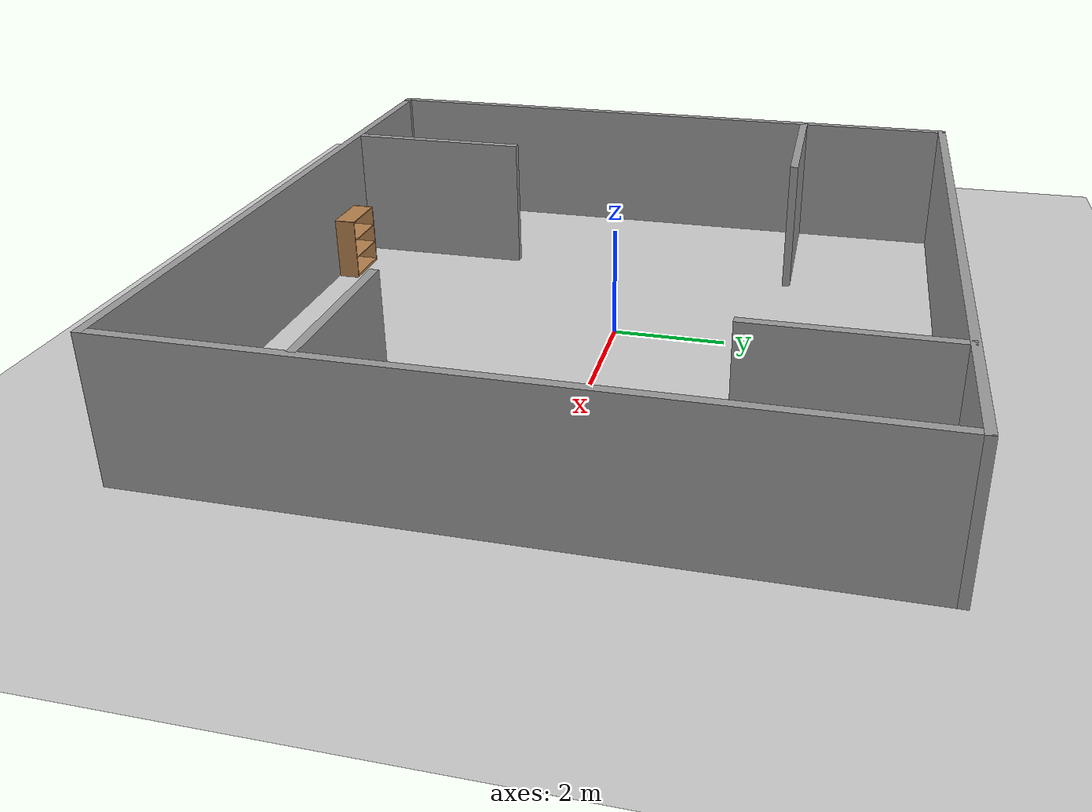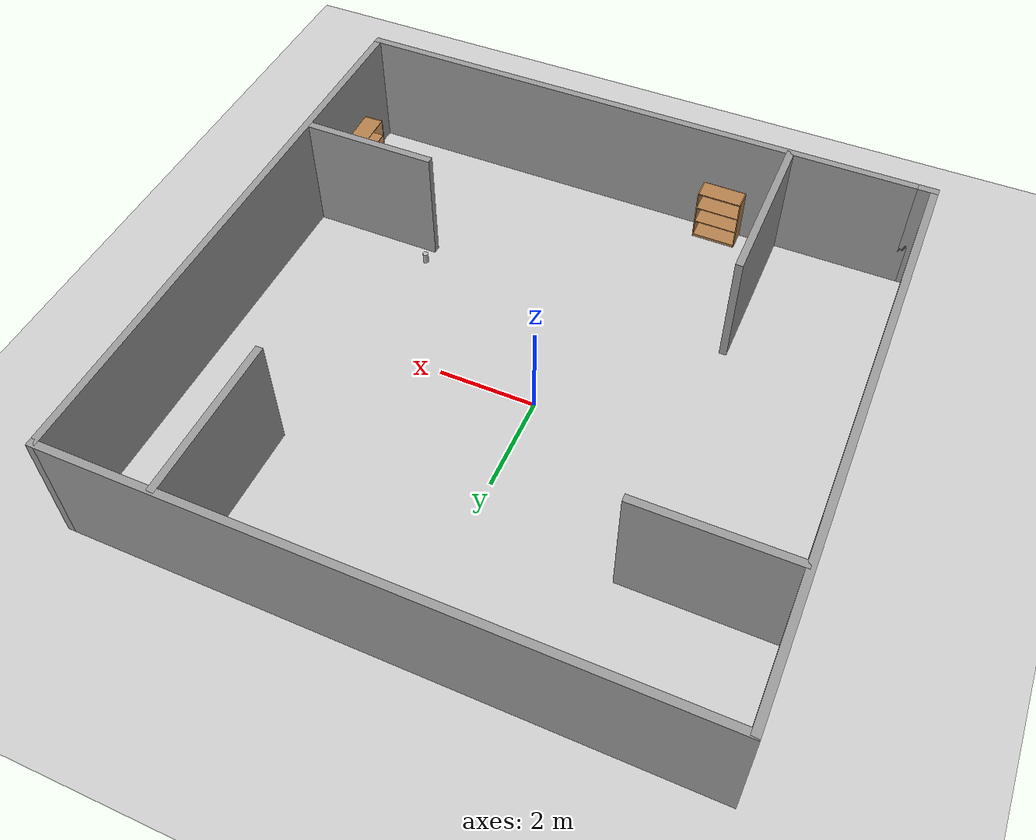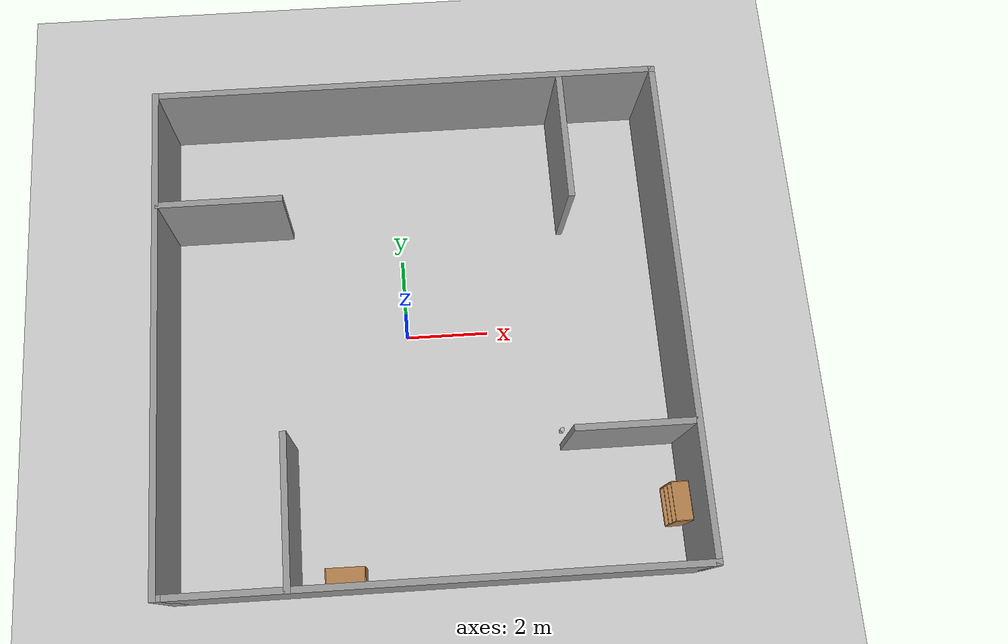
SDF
<sdf version="1.7">
 <world name="default">
  <model name="ground_plane">
   <static>1</static>
   <link name="link">
    <collision name="collision">
     <geometry><plane><normal>0 0 1</normal><size>100 100</size></plane></geometry>
     <surface>
      <contact><collide_bitmask>65535</collide_bitmask></contact>
      <friction><ode><mu>100</mu><mu2>50</mu2></ode></friction>
     </surface>
    </collision>
    <visual name="visual">
     <cast_shadows>0</cast_shadows>
     <geometry><plane><normal>0 0 1</normal><size>100 100</size></plane></geometry>
     <material>
      <script><uri>file://media/materials/scripts/gazebo.material</uri><name>Gazebo/Grey</name></script>
     </material>
    </visual>
   </link>
  </model>
  <model name="Untitled">
   <pose>0.29837 -0.160836 0 0 -0 0</pose>
   <link name="Wall_10">
    <collision name="Wall_10_Collision">
     <geometry><box><size>12 0.15 2.5</size></box></geometry>
     <pose>0 0 1.25 0 -0 0</pose>
    </collision>
    <visual name="Wall_10_Visual">
     <pose>0 0 1.25 0 -0 0</pose>
     <geometry><box><size>12 0.15 2.5</size></box></geometry>
     <material>
      <script><uri>file://media/materials/scripts/gazebo.material</uri><name>Gazebo/Grey</name></script>
      <ambient>1 1 1 1</ambient>
     </material>
     <meta><layer>0</layer></meta>
    </visual>
    <pose>-6.05 -0 0 0 -0 -1.5708</pose>
   </link>
   <link name="Wall_11">
    <collision name="Wall_11_Collision">
     <geometry><box><size>0.4 0.15 2.5</size></box></geometry>
     <pose>0 0 1.25 0 -0 0</pose>
    </collision>
    <visual name="Wall_11_Visual">
     <pose>0 0 1.25 0 -0 0</pose>
     <geometry><box><size>0.4 0.15 2.5</size></box></geometry>
     <material>
      <script><uri>file://media/materials/scripts/gazebo.material</uri><name>Gazebo/Grey</name></script>
      <ambient>1 1 1 1</ambient>
     </material>
     <meta><layer>0</layer></meta>
    </visual>
    <pose>-5.925 -5.925 0 0 -0 0</pose>
   </link>
   <link name="Wall_7">
    <collision name="Wall_7_Collision">
     <geometry><box><size>12 0.15 2.5</size></box></geometry>
     <pose>0 0 1.25 0 -0 0</pose>
    </collision>
    <visual name="Wall_7_Visual">
     <pose>0 0 1.25 0 -0 0</pose>
     <geometry><box><size>12 0.15 2.5</size></box></geometry>
     <material>
      <script><uri>file://media/materials/scripts/gazebo.material</uri><name>Gazebo/Grey</name></script>
      <ambient>1 1 1 1</ambient>
     </material>
     <meta><layer>0</layer></meta>
    </visual>
    <pose>0.125 -5.925 0 0 -0 0</pose>
   </link>
   <link name="Wall_8">
    <collision name="Wall_8_Collision">
     <geometry><box><size>12 0.15 2.5</size></box></geometry>
     <pose>0 0 1.25 0 -0 0</pose>
    </collision>
    <visual name="Wall_8_Visual">
     <pose>0 0 1.25 0 -0 0</pose>
     <geometry><box><size>12 0.15 2.5</size></box></geometry>
     <material>
      <script><uri>file://media/materials/scripts/gazebo.material</uri><name>Gazebo/Grey</name></script>
      <ambient>1 1 1 1</ambient>
     </material>
     <meta><layer>0</layer></meta>
    </visual>
    <pose>6.05 -0 0 0 -0 1.5708</pose>
   </link>
   <link name="Wall_9">
    <collision name="Wall_9_Collision">
     <geometry><box><size>12.25 0.15 2.5</size></box></geometry>
     <pose>0 0 1.25 0 -0 0</pose>
    </collision>
    <visual name="Wall_9_Visual">
     <pose>0 0 1.25 0 -0 0</pose>
     <geometry><box><size>12.25 0.15 2.5</size></box></geometry>
     <material>
      <script><uri>file://media/materials/scripts/gazebo.material</uri><name>Gazebo/Grey</name></script>
      <ambient>1 1 1 1</ambient>
     </material>
     <meta><layer>0</layer></meta>
    </visual>
    <pose>-0 5.925 0 0 -0 3.14159</pose>
   </link>
   <static>1</static>
  </model>
  <model name="auto_parking_0">
   <pose>0.28049 -0.18355 0 0 -0 0</pose>
   <link name="Wall_11">
    <collision name="Wall_11_Collision">
     <geometry><box><size>3.25 0.15 2.5</size></box></geometry>
     <pose>0 0 1.25 0 -0 0</pose>
    </collision>
    <visual name="Wall_11_Visual">
     <pose>0 0 1.25 0 -0 0</pose>
     <geometry><box><size>3.25 0.15 2.5</size></box></geometry>
     <material>
      <script><uri>file://media/materials/scripts/gazebo.material</uri><name>Gazebo/Grey</name></script>
      <ambient>1 1 1 1</ambient>
     </material>
     <meta><layer>0</layer></meta>
    </visual>
    <pose>3.7875 4.34983 0 0 -0 1.5708</pose>
   </link>
   <link name="Wall_4">
    <collision name="Wall_4_Collision">
     <geometry><box><size>2.75 0.15 2.5</size></box></geometry>
     <pose>0 0 1.25 0 -0 0</pose>
    </collision>
    <visual name="Wall_4_Visual">
     <pose>0 0 1.25 0 -0 0</pose>
     <geometry><box><size>2.75 0.15 2.5</size></box></geometry>
     <material>
      <script><uri>file://media/materials/scripts/gazebo.material</uri><name>Gazebo/Grey</name></script>
      <ambient>1 1 1 1</ambient>
     </material>
     <meta><layer>0</layer></meta>
    </visual>
    <pose>4.64951 -2.80645 0 0 -0 0</pose>
   </link>
   <link name="Wall_7">
    <collision name="Wall_7_Collision">
     <geometry><box><size>3.5 0.15 2.5</size></box></geometry>
     <pose>0 0 1.25 0 -0 0</pose>
    </collision>
    <visual name="Wall_7_Visual">
     <pose>0 0 1.25 0 -0 0</pose>
     <geometry><box><size>3.5 0.15 2.5</size></box></geometry>
     <material>
      <script><uri>file://media/materials/scripts/gazebo.material</uri><name>Gazebo/Grey</name></script>
      <ambient>1 1 1 1</ambient>
     </material>
     <meta><layer>0</layer></meta>
    </visual>
    <pose>-3.17391 -4.22483 0 0 -0 1.5708</pose>
   </link>
   <link name="Wall_9">
    <collision name="Wall_9_Collision">
     <geometry><box><size>3 0.15 2.5</size></box></geometry>
     <pose>0 0 1.25 0 -0 0</pose>
    </collision>
    <visual name="Wall_9_Visual">
     <pose>0 0 1.25 0 -0 0</pose>
     <geometry><box><size>3 0.15 2.5</size></box></geometry>
     <material>
      <script><uri>file://media/materials/scripts/gazebo.material</uri><name>Gazebo/Grey</name></script>
      <ambient>1 1 1 1</ambient>
     </material>
     <meta><layer>0</layer></meta>
    </visual>
    <pose>-4.52451 3.09104 0 0 -0 3.14159</pose>
   </link>
   <static>1</static>
  </model>
  <model name="bookshelf_0">
   <static>1</static>
   <link name="link">
    <inertial><mass>1</mass></inertial>
    <collision name="back">
     <pose>0 0.005 0.6 0 -0 0</pose>
     <geometry><box><size>0.9 0.01 1.2</size></box></geometry>
    </collision>
    <visual name="visual1">
     <pose>0 0.005 0.6 0 -0 0</pose>
     <geometry><box><size>0.9 0.01 1.2</size></box></geometry>
     <material>
      <script><uri>file://media/materials/scripts/gazebo.material</uri><name>Gazebo/Wood</name></script>
     </material>
    </visual>
    <collision name="left_side">
     <pose>0.45 -0.195 0.6 0 -0 0</pose>
     <geometry><box><size>0.02 0.4 1.2</size></box></geometry>
    </collision>
    <visual name="visual2">
     <pose>0.45 -0.195 0.6 0 -0 0</pose>
     <geometry><box><size>0.02 0.4 1.2</size></box></geometry>
     <material>
      <script><uri>file://media/materials/scripts/gazebo.material</uri><name>Gazebo/Wood</name></script>
     </material>
    </visual>
    <collision name="right_side">
     <pose>-0.45 -0.195 0.6 0 -0 0</pose>
     <geometry><box><size>0.02 0.4 1.2</size></box></geometry>
    </collision>
    <visual name="visual3">
     <pose>-0.45 -0.195 0.6 0 -0 0</pose>
     <geometry><box><size>0.02 0.4 1.2</size></box></geometry>
     <material>
      <script><uri>file://media/materials/scripts/gazebo.material</uri><name>Gazebo/Wood</name></script>
     </material>
    </visual>
    <collision name="bottom">
     <pose>0 -0.195 0.03 0 -0 0</pose>
     <geometry><box><size>0.88 0.4 0.06</size></box></geometry>
    </collision>
    <visual name="visual4">
     <pose>0 -0.195 0.03 0 -0 0</pose>
     <geometry><box><size>0.88 0.4 0.06</size></box></geometry>
     <material>
      <script><uri>file://media/materials/scripts/gazebo.material</uri><name>Gazebo/Wood</name></script>
     </material>
    </visual>
    <collision name="top">
     <pose>0 -0.195 1.19 0 -0 0</pose>
     <geometry><box><size>0.88 0.4 0.02</size></box></geometry>
    </collision>
    <visual name="visual5">
     <pose>0 -0.195 1.19 0 -0 0</pose>
     <geometry><box><size>0.88 0.4 0.02</size></box></geometry>
     <material>
      <script><uri>file://media/materials/scripts/gazebo.material</uri><name>Gazebo/Wood</name></script>
     </material>
    </visual>
    <collision name="low_shelf">
     <pose>0 -0.195 0.43 0 -0 0</pose>
     <geometry><box><size>0.88 0.4 0.02</size></box></geometry>
    </collision>
    <visual name="visual6">
     <pose>0 -0.195 0.43 0 -0 0</pose>
     <geometry><box><size>0.88 0.4 0.02</size></box></geometry>
     <material>
      <script><uri>file://media/materials/scripts/gazebo.material</uri><name>Gazebo/Wood</name></script>
     </material>
    </visual>
    <collision name="high_shelf">
     <pose>0 -0.195 0.8 0 -0 0</pose>
     <geometry><box><size>0.88 0.4 0.02</size></box></geometry>
    </collision>
    <visual name="visual7">
     <pose>0 -0.195 0.8 0 -0 0</pose>
     <geometry><box><size>0.88 0.4 0.02</size></box></geometry>
     <material>
      <script><uri>file://media/materials/scripts/gazebo.material</uri><name>Gazebo/Wood</name></script>
     </material>
    </visual>
   </link>
   <pose>6.24403 -4.58986 0 0 0 -1.55119</pose>
  </model>
  <model name="bookshelf_1">
   <static>1</static>
   <link name="link">
    <inertial><mass>1</mass></inertial>
    <collision name="back">
     <pose>0 0.005 0.6 0 -0 0</pose>
     <geometry><box><size>0.9 0.01 1.2</size></box></geometry>
    </collision>
    <visual name="visual1">
     <pose>0 0.005 0.6 0 -0 0</pose>
     <geometry><box><size>0.9 0.01 1.2</size></box></geometry>
     <material>
      <script><uri>file://media/materials/scripts/gazebo.material</uri><name>Gazebo/Wood</name></script>
     </material>
    </visual>
    <collision name="left_side">
     <pose>0.45 -0.195 0.6 0 -0 0</pose>
     <geometry><box><size>0.02 0.4 1.2</size></box></geometry>
    </collision>
    <visual name="visual2">
     <pose>0.45 -0.195 0.6 0 -0 0</pose>
     <geometry><box><size>0.02 0.4 1.2</size></box></geometry>
     <material>
      <script><uri>file://media/materials/scripts/gazebo.material</uri><name>Gazebo/Wood</name></script>
     </material>
    </visual>
    <collision name="right_side">
     <pose>-0.45 -0.195 0.6 0 -0 0</pose>
     <geometry><box><size>0.02 0.4 1.2</size></box></geometry>
    </collision>
    <visual name="visual3">
     <pose>-0.45 -0.195 0.6 0 -0 0</pose>
     <geometry><box><size>0.02 0.4 1.2</size></box></geometry>
     <material>
      <script><uri>file://media/materials/scripts/gazebo.material</uri><name>Gazebo/Wood</name></script>
     </material>
    </visual>
    <collision name="bottom">
     <pose>0 -0.195 0.03 0 -0 0</pose>
     <geometry><box><size>0.88 0.4 0.06</size></box></geometry>
    </collision>
    <visual name="visual4">
     <pose>0 -0.195 0.03 0 -0 0</pose>
     <geometry><box><size>0.88 0.4 0.06</size></box></geometry>
     <material>
      <script><uri>file://media/materials/scripts/gazebo.material</uri><name>Gazebo/Wood</name></script>
     </material>
    </visual>
    <collision name="top">
     <pose>0 -0.195 1.19 0 -0 0</pose>
     <geometry><box><size>0.88 0.4 0.02</size></box></geometry>
    </collision>
    <visual name="visual5">
     <pose>0 -0.195 1.19 0 -0 0</pose>
     <geometry><box><size>0.88 0.4 0.02</size></box></geometry>
     <material>
      <script><uri>file://media/materials/scripts/gazebo.material</uri><name>Gazebo/Wood</name></script>
     </material>
    </visual>
    <collision name="low_shelf">
     <pose>0 -0.195 0.43 0 -0 0</pose>
     <geometry><box><size>0.88 0.4 0.02</size></box></geometry>
    </collision>
    <visual name="visual6">
     <pose>0 -0.195 0.43 0 -0 0</pose>
     <geometry><box><size>0.88 0.4 0.02</size></box></geometry>
     <material>
      <script><uri>file://media/materials/scripts/gazebo.material</uri><name>Gazebo/Wood</name></script>
     </material>
    </visual>
    <collision name="high_shelf">
     <pose>0 -0.195 0.8 0 -0 0</pose>
     <geometry><box><size>0.88 0.4 0.02</size></box></geometry>
    </collision>
    <visual name="visual7">
     <pose>0 -0.195 0.8 0 -0 0</pose>
     <geometry><box><size>0.88 0.4 0.02</size></box></geometry>
     <material>
      <script><uri>file://media/materials/scripts/gazebo.material</uri><name>Gazebo/Wood</name></script>
     </material>
    </visual>
   </link>
   <pose>-1.72752 -5.99402 0 0 -0 3.13495</pose>
  </model>
  <model name="beer_1">
   <link name="link">
    <pose>0 0 0.115 0 -0 0</pose>
    <inertial>
     <mass>0.39</mass>
     <inertia><ixx>0.00058</ixx><ixy>0</ixy><ixz>0</ixz><iyy>0.00058</iyy><iyz>0</iyz><izz>0.00019</izz></inertia>
    </inertial>
    <collision name="collision">
     <geometry><cylinder><radius>0.055</radius><length>0.23</length></cylinder></geometry>
    </collision>
    <visual name="visual">
     <geometry><cylinder><radius>0.055</radius><length>0.23</length></cylinder></geometry>
     <material>
      <script>
       <uri>model://beer/materials/scripts</uri>
       <uri>model://beer/materials/textures</uri>
       <name>Beer/Diffuse</name>
      </script>
     </material>
    </visual>
   </link>
   <pose>3.61898 -2.59959 -3e-06 0 -0 -1e-05</pose>
  </model>
 </world>
</sdf>
